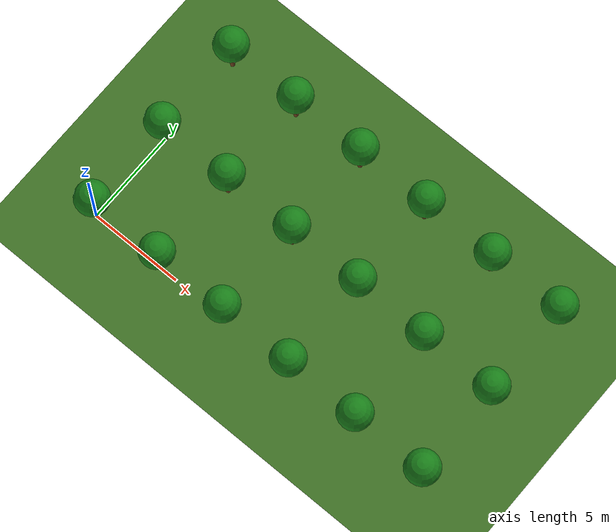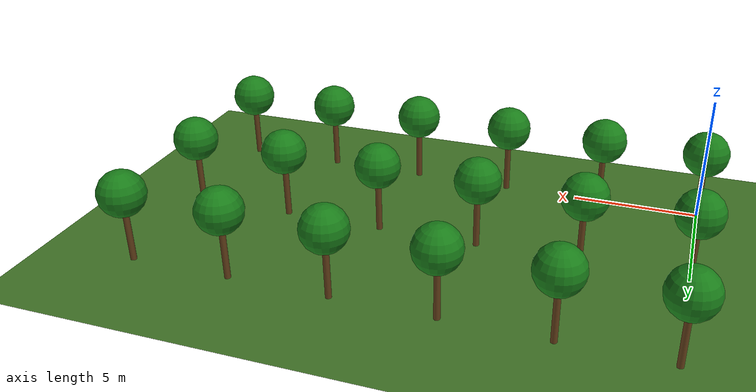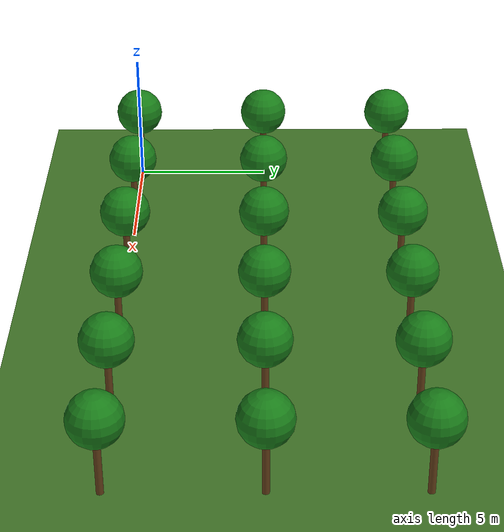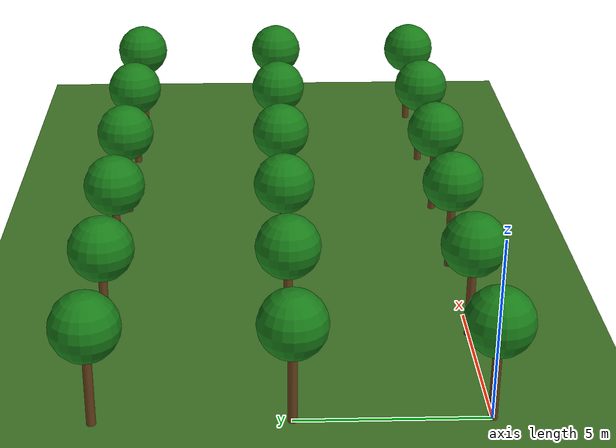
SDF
<sdf version="1.9">
 <world name="orchard">
  <physics name="1ms" type="ignore">
   <max_step_size>0.001</max_step_size>
   <real_time_factor>1.0</real_time_factor>
  </physics>
  <plugin filename="gz-sim-sensors-system" name="gz::sim::systems::Sensors">
   <render_engine>ogre</render_engine>
  </plugin>
  <plugin filename="gz-sim-user-commands-system" name="gz::sim::systems::UserCommands"/>
  <plugin filename="gz-sim-scene-broadcaster-system" name="gz::sim::systems::SceneBroadcaster"/>
  <plugin filename="gz-sim-imu-system" name="gz::sim::systems::Imu"/>
  <plugin filename="gz-sim-navsat-system" name="gz::sim::systems::NavSat"/>
  <spherical_coordinates>
   <surface_model>EARTH_WGS84</surface_model>
   <latitude_deg>-35.363262</latitude_deg>
   <longitude_deg>149.165237</longitude_deg>
   <elevation>584</elevation>
   <heading_deg>0</heading_deg>
  </spherical_coordinates>
  <scene><ambient>0.4 0.4 0.4 1</ambient><background>0.7 0.7 1.0 1</background><shadows>true</shadows></scene>
  <light type="directional" name="sun">
   <pose>0 0 100 0 0 0</pose>
   <diffuse>0.9 0.9 0.8 1</diffuse>
   <specular>0.1 0.1 0.1 1</specular>
  </light>
  <model name="ground_plane">
   <static>true</static>
   <link name="link">
    <collision name="collision">
     <geometry><plane><normal>0 0 1</normal><size>200 200</size></plane></geometry>
    </collision>
    <visual name="visual">
     <geometry><plane><normal>0 0 1</normal><size>200 200</size></plane></geometry>
     <material>
      <ambient>0.25 0.45 0.15 1</ambient>
      <diffuse>0.25 0.45 0.15 1</diffuse>
      <specular>0.1 0.1 0.1 1</specular>
     </material>
    </visual>
   </link>
  </model>
  <model name="tree_r1_t1">
   <static>true</static>
   <link name="trunk">
    <collision name="col_trunk">
     <pose>0 0 1.25 0 0 0</pose>
     <geometry><cylinder><radius>0.12</radius><length>2.5</length></cylinder></geometry>
    </collision>
    <collision name="col_canopy">
     <pose>0 0 2.8 0 0 0</pose>
     <geometry><sphere><radius>0.9</radius></sphere></geometry>
    </collision>
    <visual name="trunk_vis">
     <pose>0 0 1.25 0 0 0</pose>
     <geometry><cylinder><radius>0.12</radius><length>2.5</length></cylinder></geometry>
     <material><ambient>0.4 0.25 0.1 1</ambient><diffuse>0.4 0.25 0.1 1</diffuse></material>
    </visual>
    <visual name="canopy_vis">
     <pose>0 0 2.8 0 0 0</pose>
     <geometry><sphere><radius>0.9</radius></sphere></geometry>
     <material><ambient>0.1 0.5 0.1 1</ambient><diffuse>0.1 0.5 0.1 1</diffuse></material>
    </visual>
   </link>
  </model>
  <model name="tree_r1_t2">
   <static>true</static>
   <pose>4 0 0 0 0 0</pose>
   <link name="trunk">
    <collision name="col_trunk">
     <pose>0 0 1.25 0 0 0</pose>
     <geometry><cylinder><radius>0.12</radius><length>2.5</length></cylinder></geometry>
    </collision>
    <collision name="col_canopy">
     <pose>0 0 2.8 0 0 0</pose>
     <geometry><sphere><radius>0.9</radius></sphere></geometry>
    </collision>
    <visual name="trunk_vis">
     <pose>0 0 1.25 0 0 0</pose>
     <geometry><cylinder><radius>0.12</radius><length>2.5</length></cylinder></geometry>
     <material><ambient>0.4 0.25 0.1 1</ambient><diffuse>0.4 0.25 0.1 1</diffuse></material>
    </visual>
    <visual name="canopy_vis">
     <pose>0 0 2.8 0 0 0</pose>
     <geometry><sphere><radius>0.9</radius></sphere></geometry>
     <material><ambient>0.1 0.5 0.1 1</ambient><diffuse>0.1 0.5 0.1 1</diffuse></material>
    </visual>
   </link>
  </model>
  <model name="tree_r1_t3">
   <static>true</static>
   <pose>8 0 0 0 0 0</pose>
   <link name="trunk">
    <collision name="col_trunk">
     <pose>0 0 1.25 0 0 0</pose>
     <geometry><cylinder><radius>0.12</radius><length>2.5</length></cylinder></geometry>
    </collision>
    <collision name="col_canopy">
     <pose>0 0 2.8 0 0 0</pose>
     <geometry><sphere><radius>0.9</radius></sphere></geometry>
    </collision>
    <visual name="trunk_vis">
     <pose>0 0 1.25 0 0 0</pose>
     <geometry><cylinder><radius>0.12</radius><length>2.5</length></cylinder></geometry>
     <material><ambient>0.4 0.25 0.1 1</ambient><diffuse>0.4 0.25 0.1 1</diffuse></material>
    </visual>
    <visual name="canopy_vis">
     <pose>0 0 2.8 0 0 0</pose>
     <geometry><sphere><radius>0.9</radius></sphere></geometry>
     <material><ambient>0.1 0.5 0.1 1</ambient><diffuse>0.1 0.5 0.1 1</diffuse></material>
    </visual>
   </link>
  </model>
  <model name="tree_r1_t4">
   <static>true</static>
   <pose>12 0 0 0 0 0</pose>
   <link name="trunk">
    <collision name="col_trunk">
     <pose>0 0 1.25 0 0 0</pose>
     <geometry><cylinder><radius>0.12</radius><length>2.5</length></cylinder></geometry>
    </collision>
    <collision name="col_canopy">
     <pose>0 0 2.8 0 0 0</pose>
     <geometry><sphere><radius>0.9</radius></sphere></geometry>
    </collision>
    <visual name="trunk_vis">
     <pose>0 0 1.25 0 0 0</pose>
     <geometry><cylinder><radius>0.12</radius><length>2.5</length></cylinder></geometry>
     <material><ambient>0.4 0.25 0.1 1</ambient><diffuse>0.4 0.25 0.1 1</diffuse></material>
    </visual>
    <visual name="canopy_vis">
     <pose>0 0 2.8 0 0 0</pose>
     <geometry><sphere><radius>0.9</radius></sphere></geometry>
     <material><ambient>0.1 0.5 0.1 1</ambient><diffuse>0.1 0.5 0.1 1</diffuse></material>
    </visual>
   </link>
  </model>
  <model name="tree_r1_t5">
   <static>true</static>
   <pose>16 0 0 0 0 0</pose>
   <link name="trunk">
    <collision name="col_trunk">
     <pose>0 0 1.25 0 0 0</pose>
     <geometry><cylinder><radius>0.12</radius><length>2.5</length></cylinder></geometry>
    </collision>
    <collision name="col_canopy">
     <pose>0 0 2.8 0 0 0</pose>
     <geometry><sphere><radius>0.9</radius></sphere></geometry>
    </collision>
    <visual name="trunk_vis">
     <pose>0 0 1.25 0 0 0</pose>
     <geometry><cylinder><radius>0.12</radius><length>2.5</length></cylinder></geometry>
     <material><ambient>0.4 0.25 0.1 1</ambient><diffuse>0.4 0.25 0.1 1</diffuse></material>
    </visual>
    <visual name="canopy_vis">
     <pose>0 0 2.8 0 0 0</pose>
     <geometry><sphere><radius>0.9</radius></sphere></geometry>
     <material><ambient>0.1 0.5 0.1 1</ambient><diffuse>0.1 0.5 0.1 1</diffuse></material>
    </visual>
   </link>
  </model>
  <model name="tree_r1_t6">
   <static>true</static>
   <pose>20 0 0 0 0 0</pose>
   <link name="trunk">
    <collision name="col_trunk">
     <pose>0 0 1.25 0 0 0</pose>
     <geometry><cylinder><radius>0.12</radius><length>2.5</length></cylinder></geometry>
    </collision>
    <collision name="col_canopy">
     <pose>0 0 2.8 0 0 0</pose>
     <geometry><sphere><radius>0.9</radius></sphere></geometry>
    </collision>
    <visual name="trunk_vis">
     <pose>0 0 1.25 0 0 0</pose>
     <geometry><cylinder><radius>0.12</radius><length>2.5</length></cylinder></geometry>
     <material><ambient>0.4 0.25 0.1 1</ambient><diffuse>0.4 0.25 0.1 1</diffuse></material>
    </visual>
    <visual name="canopy_vis">
     <pose>0 0 2.8 0 0 0</pose>
     <geometry><sphere><radius>0.9</radius></sphere></geometry>
     <material><ambient>0.1 0.5 0.1 1</ambient><diffuse>0.1 0.5 0.1 1</diffuse></material>
    </visual>
   </link>
  </model>
  <model name="tree_r2_t1">
   <static>true</static>
   <pose>0 5 0 0 0 0</pose>
   <link name="trunk">
    <collision name="col_trunk">
     <pose>0 0 1.25 0 0 0</pose>
     <geometry><cylinder><radius>0.12</radius><length>2.5</length></cylinder></geometry>
    </collision>
    <collision name="col_canopy">
     <pose>0 0 2.8 0 0 0</pose>
     <geometry><sphere><radius>0.9</radius></sphere></geometry>
    </collision>
    <visual name="trunk_vis">
     <pose>0 0 1.25 0 0 0</pose>
     <geometry><cylinder><radius>0.12</radius><length>2.5</length></cylinder></geometry>
     <material><ambient>0.4 0.25 0.1 1</ambient><diffuse>0.4 0.25 0.1 1</diffuse></material>
    </visual>
    <visual name="canopy_vis">
     <pose>0 0 2.8 0 0 0</pose>
     <geometry><sphere><radius>0.9</radius></sphere></geometry>
     <material><ambient>0.1 0.5 0.1 1</ambient><diffuse>0.1 0.5 0.1 1</diffuse></material>
    </visual>
   </link>
  </model>
  <model name="tree_r2_t2">
   <static>true</static>
   <pose>4 5 0 0 0 0</pose>
   <link name="trunk">
    <collision name="col_trunk">
     <pose>0 0 1.25 0 0 0</pose>
     <geometry><cylinder><radius>0.12</radius><length>2.5</length></cylinder></geometry>
    </collision>
    <collision name="col_canopy">
     <pose>0 0 2.8 0 0 0</pose>
     <geometry><sphere><radius>0.9</radius></sphere></geometry>
    </collision>
    <visual name="trunk_vis">
     <pose>0 0 1.25 0 0 0</pose>
     <geometry><cylinder><radius>0.12</radius><length>2.5</length></cylinder></geometry>
     <material><ambient>0.4 0.25 0.1 1</ambient><diffuse>0.4 0.25 0.1 1</diffuse></material>
    </visual>
    <visual name="canopy_vis">
     <pose>0 0 2.8 0 0 0</pose>
     <geometry><sphere><radius>0.9</radius></sphere></geometry>
     <material><ambient>0.1 0.5 0.1 1</ambient><diffuse>0.1 0.5 0.1 1</diffuse></material>
    </visual>
   </link>
  </model>
  <model name="tree_r2_t3">
   <static>true</static>
   <pose>8 5 0 0 0 0</pose>
   <link name="trunk">
    <collision name="col_trunk">
     <pose>0 0 1.25 0 0 0</pose>
     <geometry><cylinder><radius>0.12</radius><length>2.5</length></cylinder></geometry>
    </collision>
    <collision name="col_canopy">
     <pose>0 0 2.8 0 0 0</pose>
     <geometry><sphere><radius>0.9</radius></sphere></geometry>
    </collision>
    <visual name="trunk_vis">
     <pose>0 0 1.25 0 0 0</pose>
     <geometry><cylinder><radius>0.12</radius><length>2.5</length></cylinder></geometry>
     <material><ambient>0.4 0.25 0.1 1</ambient><diffuse>0.4 0.25 0.1 1</diffuse></material>
    </visual>
    <visual name="canopy_vis">
     <pose>0 0 2.8 0 0 0</pose>
     <geometry><sphere><radius>0.9</radius></sphere></geometry>
     <material><ambient>0.1 0.5 0.1 1</ambient><diffuse>0.1 0.5 0.1 1</diffuse></material>
    </visual>
   </link>
  </model>
  <model name="tree_r2_t4">
   <static>true</static>
   <pose>12 5 0 0 0 0</pose>
   <link name="trunk">
    <collision name="col_trunk">
     <pose>0 0 1.25 0 0 0</pose>
     <geometry><cylinder><radius>0.12</radius><length>2.5</length></cylinder></geometry>
    </collision>
    <collision name="col_canopy">
     <pose>0 0 2.8 0 0 0</pose>
     <geometry><sphere><radius>0.9</radius></sphere></geometry>
    </collision>
    <visual name="trunk_vis">
     <pose>0 0 1.25 0 0 0</pose>
     <geometry><cylinder><radius>0.12</radius><length>2.5</length></cylinder></geometry>
     <material><ambient>0.4 0.25 0.1 1</ambient><diffuse>0.4 0.25 0.1 1</diffuse></material>
    </visual>
    <visual name="canopy_vis">
     <pose>0 0 2.8 0 0 0</pose>
     <geometry><sphere><radius>0.9</radius></sphere></geometry>
     <material><ambient>0.1 0.5 0.1 1</ambient><diffuse>0.1 0.5 0.1 1</diffuse></material>
    </visual>
   </link>
  </model>
  <model name="tree_r2_t5">
   <static>true</static>
   <pose>16 5 0 0 0 0</pose>
   <link name="trunk">
    <collision name="col_trunk">
     <pose>0 0 1.25 0 0 0</pose>
     <geometry><cylinder><radius>0.12</radius><length>2.5</length></cylinder></geometry>
    </collision>
    <collision name="col_canopy">
     <pose>0 0 2.8 0 0 0</pose>
     <geometry><sphere><radius>0.9</radius></sphere></geometry>
    </collision>
    <visual name="trunk_vis">
     <pose>0 0 1.25 0 0 0</pose>
     <geometry><cylinder><radius>0.12</radius><length>2.5</length></cylinder></geometry>
     <material><ambient>0.4 0.25 0.1 1</ambient><diffuse>0.4 0.25 0.1 1</diffuse></material>
    </visual>
    <visual name="canopy_vis">
     <pose>0 0 2.8 0 0 0</pose>
     <geometry><sphere><radius>0.9</radius></sphere></geometry>
     <material><ambient>0.1 0.5 0.1 1</ambient><diffuse>0.1 0.5 0.1 1</diffuse></material>
    </visual>
   </link>
  </model>
  <model name="tree_r2_t6">
   <static>true</static>
   <pose>20 5 0 0 0 0</pose>
   <link name="trunk">
    <collision name="col_trunk">
     <pose>0 0 1.25 0 0 0</pose>
     <geometry><cylinder><radius>0.12</radius><length>2.5</length></cylinder></geometry>
    </collision>
    <collision name="col_canopy">
     <pose>0 0 2.8 0 0 0</pose>
     <geometry><sphere><radius>0.9</radius></sphere></geometry>
    </collision>
    <visual name="trunk_vis">
     <pose>0 0 1.25 0 0 0</pose>
     <geometry><cylinder><radius>0.12</radius><length>2.5</length></cylinder></geometry>
     <material><ambient>0.4 0.25 0.1 1</ambient><diffuse>0.4 0.25 0.1 1</diffuse></material>
    </visual>
    <visual name="canopy_vis">
     <pose>0 0 2.8 0 0 0</pose>
     <geometry><sphere><radius>0.9</radius></sphere></geometry>
     <material><ambient>0.1 0.5 0.1 1</ambient><diffuse>0.1 0.5 0.1 1</diffuse></material>
    </visual>
   </link>
  </model>
  <model name="tree_r3_t1">
   <static>true</static>
   <pose>0 10 0 0 0 0</pose>
   <link name="trunk">
    <collision name="col_trunk">
     <pose>0 0 1.25 0 0 0</pose>
     <geometry><cylinder><radius>0.12</radius><length>2.5</length></cylinder></geometry>
    </collision>
    <collision name="col_canopy">
     <pose>0 0 2.8 0 0 0</pose>
     <geometry><sphere><radius>0.9</radius></sphere></geometry>
    </collision>
    <visual name="trunk_vis">
     <pose>0 0 1.25 0 0 0</pose>
     <geometry><cylinder><radius>0.12</radius><length>2.5</length></cylinder></geometry>
     <material><ambient>0.4 0.25 0.1 1</ambient><diffuse>0.4 0.25 0.1 1</diffuse></material>
    </visual>
    <visual name="canopy_vis">
     <pose>0 0 2.8 0 0 0</pose>
     <geometry><sphere><radius>0.9</radius></sphere></geometry>
     <material><ambient>0.1 0.5 0.1 1</ambient><diffuse>0.1 0.5 0.1 1</diffuse></material>
    </visual>
   </link>
  </model>
  <model name="tree_r3_t2">
   <static>true</static>
   <pose>4 10 0 0 0 0</pose>
   <link name="trunk">
    <collision name="col_trunk">
     <pose>0 0 1.25 0 0 0</pose>
     <geometry><cylinder><radius>0.12</radius><length>2.5</length></cylinder></geometry>
    </collision>
    <collision name="col_canopy">
     <pose>0 0 2.8 0 0 0</pose>
     <geometry><sphere><radius>0.9</radius></sphere></geometry>
    </collision>
    <visual name="trunk_vis">
     <pose>0 0 1.25 0 0 0</pose>
     <geometry><cylinder><radius>0.12</radius><length>2.5</length></cylinder></geometry>
     <material><ambient>0.4 0.25 0.1 1</ambient><diffuse>0.4 0.25 0.1 1</diffuse></material>
    </visual>
    <visual name="canopy_vis">
     <pose>0 0 2.8 0 0 0</pose>
     <geometry><sphere><radius>0.9</radius></sphere></geometry>
     <material><ambient>0.1 0.5 0.1 1</ambient><diffuse>0.1 0.5 0.1 1</diffuse></material>
    </visual>
   </link>
  </model>
  <model name="tree_r3_t3">
   <static>true</static>
   <pose>8 10 0 0 0 0</pose>
   <link name="trunk">
    <collision name="col_trunk">
     <pose>0 0 1.25 0 0 0</pose>
     <geometry><cylinder><radius>0.12</radius><length>2.5</length></cylinder></geometry>
    </collision>
    <collision name="col_canopy">
     <pose>0 0 2.8 0 0 0</pose>
     <geometry><sphere><radius>0.9</radius></sphere></geometry>
    </collision>
    <visual name="trunk_vis">
     <pose>0 0 1.25 0 0 0</pose>
     <geometry><cylinder><radius>0.12</radius><length>2.5</length></cylinder></geometry>
     <material><ambient>0.4 0.25 0.1 1</ambient><diffuse>0.4 0.25 0.1 1</diffuse></material>
    </visual>
    <visual name="canopy_vis">
     <pose>0 0 2.8 0 0 0</pose>
     <geometry><sphere><radius>0.9</radius></sphere></geometry>
     <material><ambient>0.1 0.5 0.1 1</ambient><diffuse>0.1 0.5 0.1 1</diffuse></material>
    </visual>
   </link>
  </model>
  <model name="tree_r3_t4">
   <static>true</static>
   <pose>12 10 0 0 0 0</pose>
   <link name="trunk">
    <collision name="col_trunk">
     <pose>0 0 1.25 0 0 0</pose>
     <geometry><cylinder><radius>0.12</radius><length>2.5</length></cylinder></geometry>
    </collision>
    <collision name="col_canopy">
     <pose>0 0 2.8 0 0 0</pose>
     <geometry><sphere><radius>0.9</radius></sphere></geometry>
    </collision>
    <visual name="trunk_vis">
     <pose>0 0 1.25 0 0 0</pose>
     <geometry><cylinder><radius>0.12</radius><length>2.5</length></cylinder></geometry>
     <material><ambient>0.4 0.25 0.1 1</ambient><diffuse>0.4 0.25 0.1 1</diffuse></material>
    </visual>
    <visual name="canopy_vis">
     <pose>0 0 2.8 0 0 0</pose>
     <geometry><sphere><radius>0.9</radius></sphere></geometry>
     <material><ambient>0.1 0.5 0.1 1</ambient><diffuse>0.1 0.5 0.1 1</diffuse></material>
    </visual>
   </link>
  </model>
  <model name="tree_r3_t5">
   <static>true</static>
   <pose>16 10 0 0 0 0</pose>
   <link name="trunk">
    <collision name="col_trunk">
     <pose>0 0 1.25 0 0 0</pose>
     <geometry><cylinder><radius>0.12</radius><length>2.5</length></cylinder></geometry>
    </collision>
    <collision name="col_canopy">
     <pose>0 0 2.8 0 0 0</pose>
     <geometry><sphere><radius>0.9</radius></sphere></geometry>
    </collision>
    <visual name="trunk_vis">
     <pose>0 0 1.25 0 0 0</pose>
     <geometry><cylinder><radius>0.12</radius><length>2.5</length></cylinder></geometry>
     <material><ambient>0.4 0.25 0.1 1</ambient><diffuse>0.4 0.25 0.1 1</diffuse></material>
    </visual>
    <visual name="canopy_vis">
     <pose>0 0 2.8 0 0 0</pose>
     <geometry><sphere><radius>0.9</radius></sphere></geometry>
     <material><ambient>0.1 0.5 0.1 1</ambient><diffuse>0.1 0.5 0.1 1</diffuse></material>
    </visual>
   </link>
  </model>
  <model name="tree_r3_t6">
   <static>true</static>
   <pose>20 10 0 0 0 0</pose>
   <link name="trunk">
    <collision name="col_trunk">
     <pose>0 0 1.25 0 0 0</pose>
     <geometry><cylinder><radius>0.12</radius><length>2.5</length></cylinder></geometry>
    </collision>
    <collision name="col_canopy">
     <pose>0 0 2.8 0 0 0</pose>
     <geometry><sphere><radius>0.9</radius></sphere></geometry>
    </collision>
    <visual name="trunk_vis">
     <pose>0 0 1.25 0 0 0</pose>
     <geometry><cylinder><radius>0.12</radius><length>2.5</length></cylinder></geometry>
     <material><ambient>0.4 0.25 0.1 1</ambient><diffuse>0.4 0.25 0.1 1</diffuse></material>
    </visual>
    <visual name="canopy_vis">
     <pose>0 0 2.8 0 0 0</pose>
     <geometry><sphere><radius>0.9</radius></sphere></geometry>
     <material><ambient>0.1 0.5 0.1 1</ambient><diffuse>0.1 0.5 0.1 1</diffuse></material>
    </visual>
   </link>
  </model>
 </world>
</sdf>
